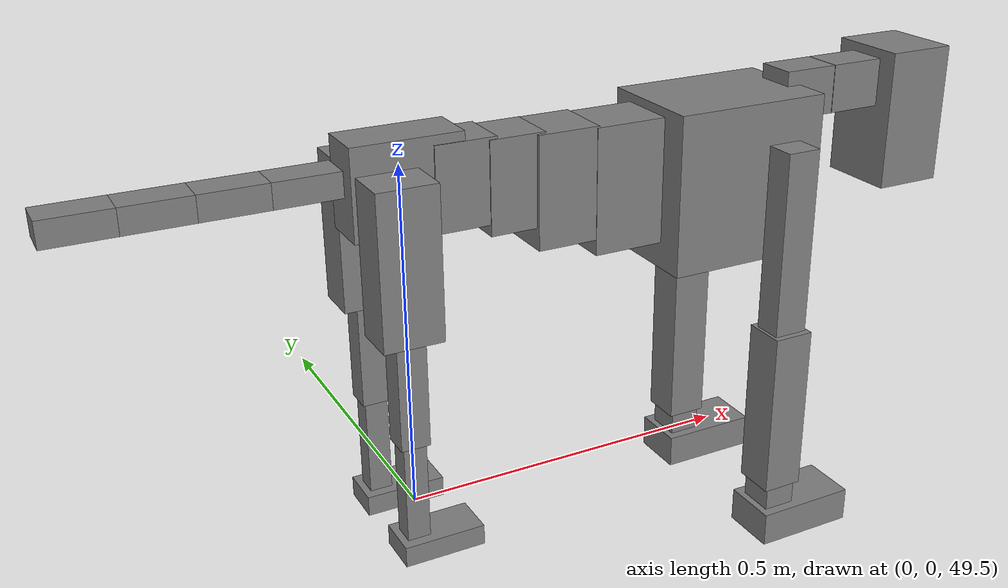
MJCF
<mujoco model="dog">

    <default>
        <joint armature="0.02" stiffness="1" damping="0.2" limited="true"/>
        <geom condim="3" friction="1 0.05 0.05" margin="0.01"/>
        <motor ctrllimited="true" ctrlrange="-1.0 1.0" forcelimited="true" gear="50"/>
    </default>

    <compiler inertiafromgeom="true" angle="radian"/>

    <option timestep="0.016" iterations="50" tolerance="1e-10" solver="Newton" jacobian="dense" cone="pyramidal"/>

    <size nconmax="20000" njmax="60000" nstack="5000000"/>
    <visual>
        <map force="0.1" zfar="30"/>
        <rgba haze="0.15 0.25 0.35 1"/>
        <quality shadowsize="2048"/>
        <global offwidth="800" offheight="800"/>
    </visual>

    <asset>
        <texture type="skybox" builtin="gradient" rgb1="0.3 0.5 0.7" rgb2="0 0 0" width="512" height="512"/>
        <texture name="texplane" type="2d" builtin="checker" rgb1=".2 .3 .4" rgb2=".1 0.15 0.2" width="512" height="512"
                 mark="cross" markrgb=".8 .8 .8"/>
        <texture name="texgeom" type="cube" builtin="flat" mark="cross" width="127" height="1278" rgb1="0.8 0.6 0.4"
                 rgb2="0.8 0.6 0.4" markrgb="1 1 1" random="0.01"/>

        <material name="matplane" reflectance="0.3" texture="texplane" texrepeat="1 1" texuniform="true"/>
        <material name="matgeom" texture="texgeom" texuniform="true" rgba="0.8 0.6 .4 1"/>
    </asset>

    <worldbody>
        <geom name="floor" pos="0 0 0" size="0 0 .25" type="plane" material="matplane" condim="3"/>

        <light directional="false" diffuse=".2 .2 .2" specular="0 0 0" pos="0 0 5" dir="0 0 -1" castshadow="false"/>
        <light mode="targetbodycom" target="torso" directional="false" diffuse=".8 .8 .8" specular="0.3 0.3 0.3"
               pos="0 0 4.0" dir="0 0 -1"/>

        <body name="root" pos="0 0 50">
            <freejoint name="root_1"/>
            <geom type="box" pos="0 0 -0.02" size="0.0774  0.0358  0.063" density="2030"/>

            <body name="spine1" pos="0.054 0 0">
                <joint name="spine1_y" axis="0 1 0" range="0 0.7" limited="true"/>
                <geom type="box" pos="0.02375 0 -0.03" size="0.04375  0.0375  0.05985" density="2030"/>

                <body name="spine2" pos="0.0612 0 0">
                    <joint name="spine2_y" axis="0 1 0" range="-0.15 0.15" limited="true"/>
                    <geom type="box" pos="0.03555  0  -0.04" size="0.04055  0.039  0.06615" density="2030"/>

                    <body name="spine3" pos="0.0730 0 0">
                        <joint name="spine3_y" axis="0 1 0" range="-0.15 0.15" limited="true"/>
                        <geom type="box" pos="0.03555  0  -0.057" size="0.04555  0.0445  0.081" density="2030"/>

                        <body name="spine4" pos="0.0780 0 0">
                            <joint name="spine4_y" axis="0 1 0" range="-0.15 0.15" limited="true"/>
                            <geom type="box" pos="0.05265  0  -0.07" size="0.05265  0.045  0.09135" density="2030"/>

                            <body name="torso" pos="0.1082 0 0">
                                <joint name="torso_y" axis="0 1 0" range="-0.15 0.15" limited="true"/>
                                <geom type="box" pos="0.11925  0  -0.085" size="0.11925  0.085  0.11745"
                                      density="2030"/>

                                <body name="neck1" pos="0.2160  0   0.0180">
                                    <joint name="neck1_y" axis="0 1 0" range="-1.2  -1" limited="true"/>
                                    <geom type="box" pos="0.0423  0  0" size="0.0423  0.03  0.036" density="2325"/>

                                    <body name="neck2" pos="0.0853  0  0">
                                        <joint name="neck2_y" axis="0 1 0" range="0.1  0" limited="true"/>
                                        <geom type="box" pos="0.0423  0  0" size="0.0423  0.03  0.036" density="2325"/>

                                        <body name="head" pos="0.0853  0  0">
                                            <joint name="head_y" axis="0 1 0" range="-0.3  -0.2" limited="true"/>
                                            <geom type="box" pos="0.0531  0  -0.055" size="0.0531  0.06  0.1044"
                                                  density="4030"/>

                                        </body>
                                    </body>
                                </body>

                                <body name="front_shoulder" pos="0.156  0   -0.0480">
                                    <joint name="front_shoulder_y" axis="0 1 0" range="-1 1.5" limited="true"/>
                                    <geom type="box" pos="0 0.13 -0.1243" size="0.0256  0.0219  0.1509" density="1158"/>
                                    <geom type="box" pos="0 -0.13 -0.1243" size="0.0256  0.0219  0.1509"
                                          density="1158"/>

                                    <body name="front_elbow" pos="0  0  -0.2486">
                                        <joint name="front_elbow_y" axis="0 1 0" range="-2 0" limited="true"/>
                                        <geom type="box" pos="0 0.13 -0.1261" size="0.0306  0.0313  0.1261"
                                              density="1081"/>
                                        <geom type="box" pos="0 -0.13 -0.1261" size="0.0306  0.0313  0.1261"
                                              density="1081"/>

                                        <body name="front_wrist" pos="0  0  -0.2522">
                                            <joint name="front_wrist_y" axis="0 1 0" range="-0.2 0" limited="true"/>
                                            <geom type="box" pos="0 0.13 -0.0254" size="0.0242  0.0269  0.0385"
                                                  density="1664"/>
                                            <geom type="box" pos="0 -0.13 -0.0254" size="0.0242  0.0269  0.0385"
                                                  density="1664"/>

                                            <body name="front_finger_end" pos="0  0  -0.0508">
                                                <joint name="front_finger_y" axis="0 1 0" range="-0.4 1"
                                                       limited="true"/>
                                                <geom type="box" pos="0.0418  0.13  -0.0106"
                                                      size="0.0766  0.0418  0.0256" density="1515"/>
                                                <geom type="box" pos="0.0418  -0.13  -0.0106"
                                                      size="0.0766  0.0418  0.0256" density="1515"/>

                                            </body>

                                        </body>
                                    </body>
                                </body>

                            </body>
                        </body>
                    </body>
                </body>
            </body>

            <body name="back_hip" pos="-0.03 0 -0.018">
                <joint name="back_hip_y" axis="0 1 0" range="-1.5 0.3" limited="true"/>
                <geom type="box" pos="0 0.07 -0.0838" size="0.0420  0.0330  0.1066" density="1154"/>
                <geom type="box" pos="0 -0.07 -0.0838" size="0.0420  0.0330  0.1066" density="1154"/>

                <body name="back_knee" pos="0  0  -0.1675">
                    <joint name="back_knee_y" axis="0 1 0" range="0 2.8" limited="true"/>
                    <geom type="box" pos="0 0.07 -0.0798" size="0.0205  0.0202  0.0953" density="1227"/>
                    <geom type="box" pos="0 -0.07 -0.0798" size="0.0205  0.0202  0.0953" density="1227"/>

                    <body name="back_ankle" pos="0  0  -0.1595">
                        <joint name="back_ankle_y" axis="0 1 0" range="-2.2 0" limited="true"/>
                        <geom type="box" pos="0 0.07 -0.0860" size="0.0163  0.0163  0.0972" density="1284"/>
                        <geom type="box" pos="0 -0.07 -0.0860" size="0.0163  0.0163  0.0972" density="1284"/>

                        <body name="back_toe_end" pos="0  0  -0.1719">
                            <joint name="back_toe_y" axis="0 1 0" range="-0.4 1" limited="true"/>
                            <geom type="box" pos="0.0317  0.07  0.0002" size="0.0581  0.0317  0.0148" density="1515"/>
                            <geom type="box" pos="0.0317  -0.07  0.0002" size="0.0581  0.0317  0.0148" density="1515"/>

                        </body>
                    </body>
                </body>
            </body>

            <body name="tail1" pos="-0.074 0 -0.006">
                <joint name="tail1_y" axis="0 1 0" range="-0.2 0.2" limited="true"/>
                <geom type="box" pos="-0.0536  0  0" size="0.045  0.025  0.0175" density="1587"/>

                <body name="tail2" pos="-0.09 0 0">
                    <joint name="tail2_y" axis="0 1 0" range="-0.2 0.2" limited="true"/>
                    <geom type="box" pos="-0.0536  0  0" size="0.045  0.025  0.0175" density="1587"/>

                    <body name="tail3" pos="-0.09 0 0">
                        <joint name="tail3_y" axis="0 1 0" range="-0.2 0.2" limited="true"/>
                        <geom type="box" pos="-0.0536  0  0" size="0.045  0.025  0.0175" density="1587"/>

                        <body name="tail4" pos="-0.09 0 0">
                            <joint name="tail4_y" axis="0 1 0" range="-0.2 0.2" limited="true"/>
                            <geom type="box" pos="-0.0536  0  0" size="0.045  0.025  0.0175" density="1587"/>

                        </body>
                    </body>
                </body>
            </body>
        </body>
    </worldbody>

    <actuator>
        <motor joint="spine1_y" forcerange="-150 150     "/>
        <motor joint="spine2_y" forcerange="-150 150     "/>
        <motor joint="spine3_y" forcerange="-150 150     "/>
        <motor joint="spine4_y" forcerange="-150 150     "/>
        <motor joint="torso_y" forcerange="-150 150     "/>
        <motor joint="neck1_y" forcerange="-100 100       "/>
        <motor joint="neck2_y" forcerange="-100 100       "/>
        <motor joint="head_y" forcerange="-150 150       "/>
        <motor joint="front_shoulder_y" forcerange="-136.75 108.95"/>
        <motor joint="front_elbow_y" forcerange="-190.51 137.11"/>
        <motor joint="front_wrist_y" forcerange="-88.05 127.07"/>
        <motor joint="front_finger_y" forcerange="-86.53 96.17"/>
        <motor joint="back_hip_y" forcerange="-347.27 292.09"/>
        <motor joint="back_knee_y" forcerange="-217.71 276.05"/>
        <motor joint="back_angle_y" forcerange="-86.90 74.59"/>
        <motor joint="back_toe_y" forcerange="-75.16 98.21"/>
        <motor joint="tail1_y" forcerange="-50 50     "/>
        <motor joint="tail2_y" forcerange="-50 50     "/>
        <motor joint="tail3_y" forcerange="-50 50     "/>
        <motor joint="tail4_y" forcerange="-50 50     "/>
    </actuator>
</mujoco>
